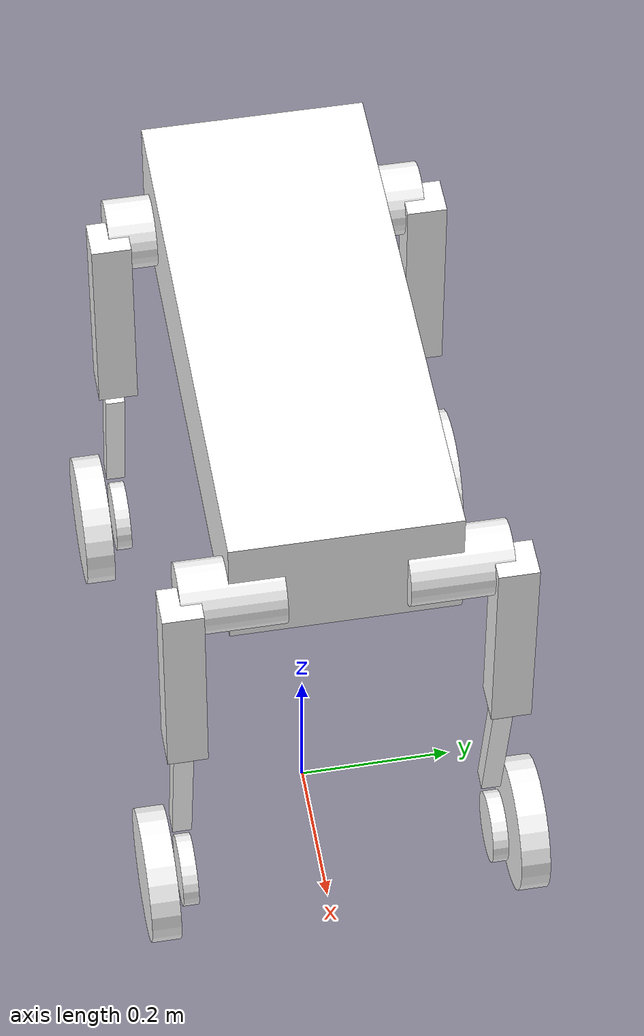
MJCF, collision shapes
<mujoco model="sduog_144_V2_s">
  <compiler angle="radian" meshdir="meshes/"/>

  <asset>
    <mesh name="base" file="base.STL"/>
    <mesh name="FL_hip_Link" file="FL_hip_Link.STL"/>
    <mesh name="FL_thigh_Link" file="FL_thigh_Link.STL"/>
    <mesh name="L_calf_s" file="L_calf_s.STL"/>
    <mesh name="L_wheel" file="L_wheel.STL"/>
    <mesh name="FR_hip_Link" file="FR_hip_Link.STL"/>
    <mesh name="FR_thigh_Link" file="FR_thigh_Link.STL"/>
    <mesh name="R_calf_s" file="R_calf_s.STL"/>
    <mesh name="R_wheel" file="R_wheel.STL"/>
    <mesh name="RL_hip_Link" file="RL_hip_Link.STL"/>
    <mesh name="RL_thigh_Link" file="RL_thigh_Link.STL"/>
    <mesh name="RR_hip_Link" file="RR_hip_Link.STL"/>
    <mesh name="RR_thigh_Link" file="RR_thigh_Link.STL"/>
  </asset>

  <worldbody>
    <body name="base_link" pos="0 0 0.8" quat="0 0 0 1">
      <inertial pos="0.03371 0.003791 0.010576" quat="0.0139079 0.690038 0.0103233 0.723566" mass="17.9" diaginertia="0.79033 0.719639 0.159172"/>
      <joint name="floating_base_joint" type="free" limited="false" actuatorfrclimited="false"/>
      <geom type="mesh" contype="0" conaffinity="0" group="1" density="0" rgba="1 1 1 1" mesh="base"/>
      <!-- Lightweight visible/collision proxy used when high-poly mesh visuals are hidden. -->
      <geom name="base_collision" type="box" pos="0.03 0 0.02" size="0.34 0.14 0.08" rgba="1 1 1 1"/>
      <body name="FL_hip_Link" pos="0.2915 0.0731 0">
        <inertial pos="-0.008296 0.008609 0" quat="0.510415 0.49568 0.502887 0.490798" mass="1.92" diaginertia="0.00321875 0.00247147 0.00184878"/>
        <joint name="FL_hip_joint" pos="0 0 0" axis="1 0 0" range="-0.488 0.78" actuatorfrcrange="-144 144"/>
        <geom type="mesh" contype="0" conaffinity="0" group="1" density="0" rgba="1 1 1 1" mesh="FL_hip_Link"/>
        <geom name="FL_hip_proxy" type="cylinder" pos="0 0.063 0" quat="0.707107 0.707107 0 0" size="0.045 0.063" rgba="1 1 1 1"/>
        <body name="FL_thigh_Link" pos="0 0.126 0">
          <inertial pos="-0.007357 -0.025269 -0.049709" quat="0.806374 0.0890027 -0.0024002 0.584665" mass="3.03643" diaginertia="0.0299404 0.0292388 0.00374588"/>
          <joint name="FL_thigh_joint" pos="0 0 0" axis="0 -1 0" range="-2.55 0.554" actuatorfrcrange="-144 144"/>
          <geom type="mesh" contype="0" conaffinity="0" group="1" density="0" rgba="1 1 1 1" mesh="FL_thigh_Link"/>
          <geom size="0.025 0.025 0.14" pos="-0.03 0 -0.11" type="box" rgba="1 1 1 1"/>
          <body name="FL_calf_Link" pos="0 0 -0.28">
            <inertial pos="0.00864 0.00147 -0.164922" quat="0.706368 -0.000364299 -0.00568496 0.707822" mass="0.596381" diaginertia="0.00752241 0.0072565 0.000353089"/>
            <joint name="FL_calf_joint" pos="0 0 0" axis="0 -1 0" range="1.21 2.8" actuatorfrcrange="-144 144"/>
            <geom type="mesh" contype="0" conaffinity="0" group="1" density="0" rgba="1 1 1 1" mesh="L_calf_s"/>
            <geom size="0.0125 0.0125 0.105" pos="0.02 0 -0.13" quat="0.995004 0 -0.0998334 0" type="box" rgba="1 1 1 1"/>
            <geom size="0.046 0.01" pos="0 0 -0.28" quat="0.707107 0.707107 0 0" type="cylinder" rgba="1 1 1 1"/>
            <body name="FL_wheel" pos="0 0.03725 -0.28">
              <inertial pos="-0.012577 -0.005886 0.003253" quat="0.376737 0.551606 0.613126 0.421754" mass="1.423" diaginertia="0.00690084 0.00535689 0.00216227"/>
              <joint name="FL_wheel_joint" pos="0 0 0" axis="0 1 0" range="-999999 999999" actuatorfrcrange="-20 20"/>
              <geom type="mesh" contype="0" conaffinity="0" group="1" density="0" rgba="1 1 1 1" mesh="L_wheel"/>
              <geom size="0.086 0.01875" quat="0.707107 0.707107 0 0" type="cylinder" rgba="1 1 1 1"/>
            </body>
          </body>
        </body>
      </body>
      <body name="FR_hip_Link" pos="0.2915 -0.0731 0">
        <inertial pos="-0.008296 -0.008609 0" quat="0.490798 0.502887 0.49568 0.510415" mass="1.92" diaginertia="0.00321875 0.00247147 0.00184878"/>
        <joint name="FR_hip_joint" pos="0 0 0" axis="1 0 0" range="-0.78 0.488" actuatorfrcrange="-144 144"/>
        <geom type="mesh" contype="0" conaffinity="0" group="1" density="0" rgba="1 1 1 1" mesh="FR_hip_Link"/>
        <geom name="FR_hip_proxy" type="cylinder" pos="0 -0.063 0" quat="0.707107 0.707107 0 0" size="0.045 0.063" rgba="1 1 1 1"/>
        <body name="FR_thigh_Link" pos="0 -0.126 0">
          <inertial pos="-0.008018 0.025243 -0.044242" quat="0.554391 -0.000263042 0.0863138 0.827768" mass="3.03643" diaginertia="0.0277969 0.0268821 0.00397395"/>
          <joint name="FR_thigh_joint" pos="0 0 0" axis="0 -1 0" range="-2.55 0.554" actuatorfrcrange="-144 144"/>
          <geom type="mesh" contype="0" conaffinity="0" group="1" density="0" rgba="1 1 1 1" mesh="FR_thigh_Link"/>
          <geom size="0.025 0.025 0.14" pos="-0.03 0 -0.11" type="box" rgba="1 1 1 1"/>
          <body name="FR_calf_Link" pos="0 0 -0.28">
            <inertial pos="0.00864 -0.00147 -0.164922" quat="0.707822 -0.00568901 -0.000364631 0.706368" mass="0.596381" diaginertia="0.00751741 0.0072515 0.000353088"/>
            <joint name="FR_calf_joint" pos="0 0 0" axis="0 -1 0" range="1.21 2.8" actuatorfrcrange="-144 144"/>
            <geom type="mesh" contype="0" conaffinity="0" group="1" density="0" rgba="1 1 1 1" mesh="R_calf_s"/>
            <geom size="0.0125 0.0125 0.105" pos="0.02 0 -0.13" quat="0.995004 0 -0.0998334 0" type="box" rgba="1 1 1 1"/>
            <geom size="0.046 0.01" pos="0 0 -0.28" quat="0.707107 0.707107 0 0" type="cylinder" rgba="1 1 1 1"/>
            <body name="FR_wheel" pos="0 -0.03725 -0.28">
              <inertial pos="0.006747 0.005886 0.011102" quat="0.669735 0.118378 0.183167 0.709854" mass="1.423" diaginertia="0.00690078 0.00535627 0.00216195"/>
              <joint name="FR_wheel_joint" pos="0 0 0" axis="0 1 0" range="-999999 999999" actuatorfrcrange="-20 20"/>
              <geom type="mesh" contype="0" conaffinity="0" group="1" density="0" rgba="1 1 1 1" mesh="R_wheel"/>
              <geom size="0.086 0.01875" quat="0.707107 0.707107 0 0" type="cylinder" rgba="1 1 1 1"/>
            </body>
          </body>
        </body>
      </body>
      <body name="RL_hip_Link" pos="-0.2915 0.0731 0">
        <inertial pos="0.008296 0.008609 0" quat="0.502887 0.490798 0.510415 0.49568" mass="1.92" diaginertia="0.00321875 0.00247147 0.00184878"/>
        <joint name="RL_hip_joint" pos="0 0 0" axis="1 0 0" range="-0.488 0.78" actuatorfrcrange="-144 144"/>
        <geom type="mesh" contype="0" conaffinity="0" group="1" density="0" rgba="1 1 1 1" mesh="RL_hip_Link"/>
        <geom name="RL_hip_proxy" type="cylinder" pos="0 0.063 0" quat="0.707107 0.707107 0 0" size="0.045 0.063" rgba="1 1 1 1"/>
        <body name="RL_thigh_Link" pos="0 0.126 0">
          <inertial pos="-0.007357 -0.025269 -0.049709" quat="0.806374 0.0890027 -0.0024002 0.584665" mass="3.03643" diaginertia="0.0299404 0.0292388 0.00374588"/>
          <joint name="RL_thigh_joint" pos="0 0 0" axis="0 -1 0" range="-2.55 0.554" actuatorfrcrange="-144 144"/>
          <geom type="mesh" contype="0" conaffinity="0" group="1" density="0" rgba="1 1 1 1" mesh="RL_thigh_Link"/>
          <geom size="0.025 0.025 0.14" pos="-0.03 0 -0.11" type="box" rgba="1 1 1 1"/>
          <body name="RL_calf_Link" pos="0 0 -0.28">
            <inertial pos="0.00864 0.00147 -0.164922" quat="0.706368 -0.000364299 -0.00568496 0.707822" mass="0.596381" diaginertia="0.00752241 0.0072565 0.000353089"/>
            <joint name="RL_calf_joint" pos="0 0 0" axis="0 -1 0" range="1.21 2.8" actuatorfrcrange="-144 144"/>
            <geom type="mesh" contype="0" conaffinity="0" group="1" density="0" rgba="1 1 1 1" mesh="L_calf_s"/>
            <geom size="0.0125 0.0125 0.105" pos="0.02 0 -0.13" quat="0.995004 0 -0.0998334 0" type="box" rgba="1 1 1 1"/>
            <geom size="0.046 0.01" pos="0 0 -0.28" quat="0.707107 0.707107 0 0" type="cylinder" rgba="1 1 1 1"/>
            <body name="RL_wheel" pos="0 0.03725 -0.28">
              <inertial pos="-0.012577 -0.005886 0.003253" quat="0.376737 0.551606 0.613126 0.421754" mass="1.423" diaginertia="0.00690084 0.00535689 0.00216227"/>
              <joint name="RL_wheel_joint" pos="0 0 0" axis="0 1 0" range="-999999 999999" actuatorfrcrange="-20 20"/>
              <geom type="mesh" contype="0" conaffinity="0" group="1" density="0" rgba="1 1 1 1" mesh="L_wheel"/>
              <geom size="0.086 0.01875" quat="0.707107 0.707107 0 0" type="cylinder" rgba="1 1 1 1"/>
            </body>
          </body>
        </body>
      </body>
      <body name="RR_hip_Link" pos="-0.2915 -0.0731 0">
        <inertial pos="0.008296 -0.008609 0" quat="0.49568 0.510415 0.490798 0.502887" mass="1.92" diaginertia="0.00321875 0.00247147 0.00184878"/>
        <joint name="RR_hip_joint" pos="0 0 0" axis="1 0 0" range="-0.78 0.488" actuatorfrcrange="-144 144"/>
        <geom type="mesh" contype="0" conaffinity="0" group="1" density="0" rgba="1 1 1 1" mesh="RR_hip_Link"/>
        <geom name="RR_hip_proxy" type="cylinder" pos="0 -0.063 0" quat="0.707107 0.707107 0 0" size="0.045 0.063" rgba="1 1 1 1"/>
        <body name="RR_thigh_Link" pos="0 -0.126 0">
          <inertial pos="-0.008018 0.025243 -0.044242" quat="0.554391 -0.000263042 0.0863138 0.827768" mass="3.03643" diaginertia="0.0277969 0.0268821 0.00397395"/>
          <joint name="RR_thigh_joint" pos="0 0 0" axis="0 -1 0" range="-2.55 0.554" actuatorfrcrange="-144 144"/>
          <geom type="mesh" contype="0" conaffinity="0" group="1" density="0" rgba="1 1 1 1" mesh="RR_thigh_Link"/>
          <geom size="0.025 0.025 0.14" pos="-0.03 0 -0.11" type="box" rgba="1 1 1 1"/>
          <body name="RR_calf_Link" pos="0 0 -0.28">
            <inertial pos="0.00864 -0.00147 -0.164922" quat="0.707822 -0.00568901 -0.000364631 0.706368" mass="0.596" diaginertia="0.00751741 0.0072515 0.000353088"/>
            <joint name="RR_calf_joint" pos="0 0 0" axis="0 -1 0" range="1.21 2.8" actuatorfrcrange="-144 144"/>
            <geom type="mesh" contype="0" conaffinity="0" group="1" density="0" rgba="1 1 1 1" mesh="R_calf_s"/>
            <geom size="0.0125 0.0125 0.105" pos="0.02 0 -0.13" quat="0.995004 0 -0.0998334 0" type="box" rgba="1 1 1 1"/>
            <geom size="0.046 0.01" pos="0 0 -0.28" quat="0.707107 0.707107 0 0" type="cylinder" rgba="1 1 1 1"/>
            <body name="RR_wheel" pos="0 -0.03725 -0.28">
              <inertial pos="0.006747 0.005886 0.011102" quat="0.669735 0.118378 0.183167 0.709854" mass="1.423" diaginertia="0.00690078 0.00535627 0.00216195"/>
              <joint name="RR_wheel_joint" pos="0 0 0" axis="0 1 0" range="-999999 999999" actuatorfrcrange="-20 20"/>
              <geom type="mesh" contype="0" conaffinity="0" group="1" density="0" rgba="1 1 1 1" mesh="R_wheel"/>
              <geom size="0.086 0.01875" quat="0.707107 0.707107 0 0" type="cylinder" rgba="1 1 1 1"/>
            </body>
          </body>
        </body>
      </body>
    </body>
  </worldbody>
  <actuator>
    <motor name="FL_hip_joint" joint="FL_hip_joint"/>
    <motor name="FL_thigh_joint" joint="FL_thigh_joint"/>
    <motor name="FL_calf_joint" joint="FL_calf_joint"/>
    <motor name="FL_wheel_joint" joint="FL_wheel_joint"/>
    <motor name="FR_hip_joint" joint="FR_hip_joint"/>
    <motor name="FR_thigh_joint" joint="FR_thigh_joint"/>
    <motor name="FR_calf_joint" joint="FR_calf_joint"/>
    <motor name="FR_wheel_joint" joint="FR_wheel_joint"/>
    <motor name="RL_hip_joint" joint="RL_hip_joint"/>
    <motor name="RL_thigh_joint" joint="RL_thigh_joint"/>
    <motor name="RL_calf_joint" joint="RL_calf_joint"/>
    <motor name="RL_wheel_joint" joint="RL_wheel_joint"/>
    <motor name="RR_hip_joint" joint="RR_hip_joint"/>
    <motor name="RR_thigh_joint" joint="RR_thigh_joint"/>
    <motor name="RR_calf_joint" joint="RR_calf_joint"/>
    <motor name="RR_wheel_joint" joint="RR_wheel_joint"/>
  </actuator>
</mujoco>
